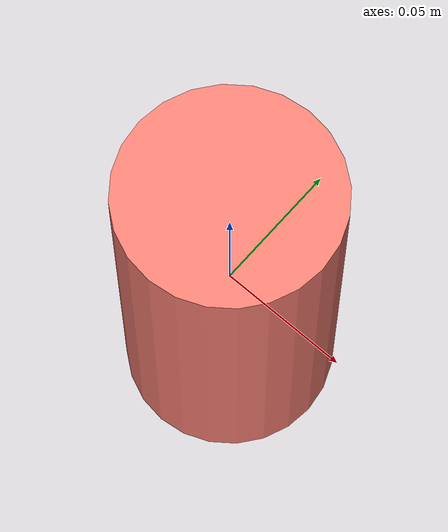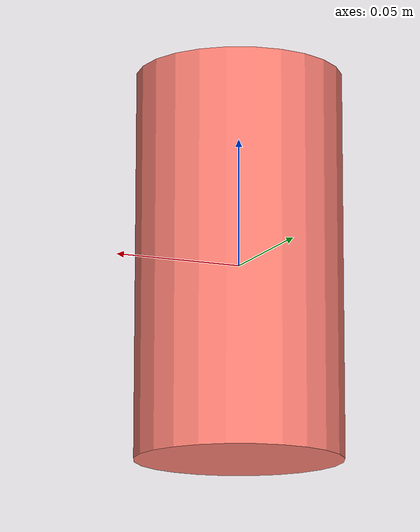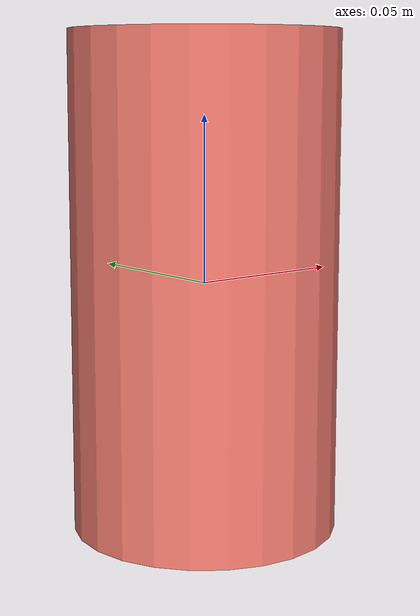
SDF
<sdf version='1.6'>
  <model name='payload'>
    <link name="payload_link">
        <inertial>
          <pose frame=''>0 0 0 0 0 0</pose>
          <mass>0.150</mass>
          <inertia>
            <ixx>0.00017655</ixx>
            <ixy>0</ixy>
            <ixz>0</ixz>
            <iyy>0.00017655</iyy>
            <iyz>0</iyz>
            <izz>0.0000528</izz>
          </inertia>
        </inertial>
        <visual name='cylinder'>
          <pose frame=''> 0 0 0 0 0 0 </pose>
          <geometry>
            <cylinder>
            <radius>0.04</radius>
            <length>0.15</length>
            </cylinder>
          </geometry>
          <material>
            <diffuse>0.98 0.5 0.45 1.0</diffuse>
          </material>
        </visual>
        <collision name='payload_link_cylinder'>
          <pose frame=''> 0 0 0 0 0 0 </pose>
          <geometry>
            <cylinder>
            <radius>0.04</radius>
            <length>0.15</length>
            </cylinder>
          </geometry>

          <surface>
            <friction>
            <ode>
              <mu>0.5</mu>
              <mu2>0.5</mu2>
            </ode>
            </friction>
          </surface>
        </collision>
    </link>
  </model>
</sdf>
